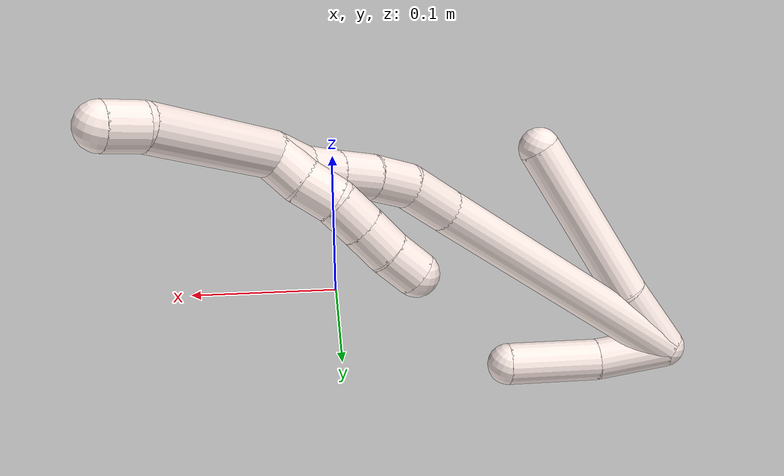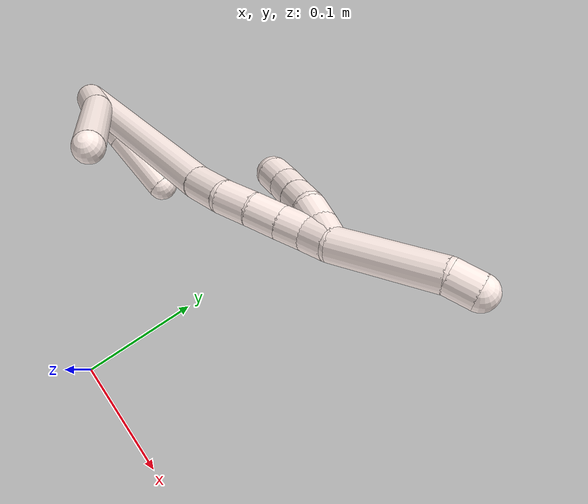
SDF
<sdf version="1.7">
 <world name="default">
  <model name="11">
   <static>0</static>
   <link name="11">
    <collision name="collision-cylinder-e_1_2_8">
     <pose>0.017433 -0.003956 0.013949 0.276351 0.877002 0.130242</pose>
     <geometry><cylinder><radius>0.0125</radius><length>0.045349</length></cylinder></geometry>
     <surface>
      <friction><ode><mu>1.16</mu><mu2>1.16</mu2><slip1>0</slip1><slip2>0</slip2></ode></friction>
      <contact><ode><kp>1e+06</kp><kd>1</kd><max_vel>0</max_vel><min_depth>0.001</min_depth></ode></contact>
     </surface>
    </collision>
    <visual name="visual-cylinder-e_1_2_8">
     <pose>0.017433 -0.003956 0.013949 0.276351 0.877002 0.130242</pose>
     <geometry><cylinder><radius>0.0125</radius><length>0.045349</length></cylinder></geometry>
     <material><ambient>1 0.933333 0.909804 1</ambient></material>
    </visual>
    <collision name="collision-cylinder-e_2_8_6">
     <pose>0.071167 -0.025201 0.061384 0.476613 0.766706 0.195321</pose>
     <geometry><cylinder><radius>0.0125</radius><length>0.104651</length></cylinder></geometry>
     <surface>
      <friction><ode><mu>1.16</mu><mu2>1.16</mu2><slip1>0</slip1><slip2>0</slip2></ode></friction>
      <contact><ode><kp>1e+06</kp><kd>1</kd><max_vel>0</max_vel><min_depth>0.001</min_depth></ode></contact>
     </surface>
    </collision>
    <visual name="visual-cylinder-e_2_8_6">
     <pose>0.071167 -0.025201 0.061384 0.476613 0.766706 0.195321</pose>
     <geometry><cylinder><radius>0.0125</radius><length>0.104651</length></cylinder></geometry>
     <material><ambient>1 0.933333 0.909804 1</ambient></material>
    </visual>
    <collision name="collision-cylinder-e_1_2_9">
     <pose>0.020099 -0.00091 -0.008718 3.03759 1.15956 2.98297</pose>
     <geometry><cylinder><radius>0.0125</radius><length>0.043855</length></cylinder></geometry>
     <surface>
      <friction><ode><mu>1.16</mu><mu2>1.16</mu2><slip1>0</slip1><slip2>0</slip2></ode></friction>
      <contact><ode><kp>1e+06</kp><kd>1</kd><max_vel>0</max_vel><min_depth>0.001</min_depth></ode></contact>
     </surface>
    </collision>
    <visual name="visual-cylinder-e_1_2_9">
     <pose>0.020099 -0.00091 -0.008718 3.03759 1.15956 2.98297</pose>
     <geometry><cylinder><radius>0.0125</radius><length>0.043855</length></cylinder></geometry>
     <material><ambient>1 0.933333 0.909804 1</ambient></material>
    </visual>
    <collision name="collision-cylinder-e_2_9_5">
     <pose>0.067369 -0.003188 -0.024361 2.94649 1.31662 2.88985</pose>
     <geometry><cylinder><radius>0.0125</radius><length>0.056145</length></cylinder></geometry>
     <surface>
      <friction><ode><mu>1.16</mu><mu2>1.16</mu2><slip1>0</slip1><slip2>0</slip2></ode></friction>
      <contact><ode><kp>1e+06</kp><kd>1</kd><max_vel>0</max_vel><min_depth>0.001</min_depth></ode></contact>
     </surface>
    </collision>
    <visual name="visual-cylinder-e_2_9_5">
     <pose>0.067369 -0.003188 -0.024361 2.94649 1.31662 2.88985</pose>
     <geometry><cylinder><radius>0.0125</radius><length>0.056145</length></cylinder></geometry>
     <material><ambient>1 0.933333 0.909804 1</ambient></material>
    </visual>
    <collision name="collision-cylinder-e_1_2_10">
     <pose>0.08464 0.000452 0.031407 -0.014401 1.21544 -0.010016</pose>
     <geometry><cylinder><radius>0.0125</radius><length>0.18056</length></cylinder></geometry>
     <surface>
      <friction><ode><mu>1.16</mu><mu2>1.16</mu2><slip1>0</slip1><slip2>0</slip2></ode></friction>
      <contact><ode><kp>1e+06</kp><kd>1</kd><max_vel>0</max_vel><min_depth>0.001</min_depth></ode></contact>
     </surface>
    </collision>
    <visual name="visual-cylinder-e_1_2_10">
     <pose>0.08464 0.000452 0.031407 -0.014401 1.21544 -0.010016</pose>
     <geometry><cylinder><radius>0.0125</radius><length>0.18056</length></cylinder></geometry>
     <material><ambient>1 0.933333 0.909804 1</ambient></material>
    </visual>
    <collision name="collision-cylinder-e_2_10_11">
     <pose>0.183225 0.002466 0.068504 -0.26788 1.17054 -0.178127</pose>
     <geometry><cylinder><radius>0.0125</radius><length>0.030284</length></cylinder></geometry>
     <surface>
      <friction><ode><mu>1.16</mu><mu2>1.16</mu2><slip1>0</slip1><slip2>0</slip2></ode></friction>
      <contact><ode><kp>1e+06</kp><kd>1</kd><max_vel>0</max_vel><min_depth>0.001</min_depth></ode></contact>
     </surface>
    </collision>
    <visual name="visual-cylinder-e_2_10_11">
     <pose>0.183225 0.002466 0.068504 -0.26788 1.17054 -0.178127</pose>
     <geometry><cylinder><radius>0.0125</radius><length>0.030284</length></cylinder></geometry>
     <material><ambient>1 0.933333 0.909804 1</ambient></material>
    </visual>
    <collision name="collision-cylinder-e_3_11_12">
     <pose>0.209078 0.007538 0.076065 -1.08101 1.24842 -0.815995</pose>
     <geometry><cylinder><radius>0.0125</radius><length>0.02511</length></cylinder></geometry>
     <surface>
      <friction><ode><mu>1.16</mu><mu2>1.16</mu2><slip1>0</slip1><slip2>0</slip2></ode></friction>
      <contact><ode><kp>1e+06</kp><kd>1</kd><max_vel>0</max_vel><min_depth>0.001</min_depth></ode></contact>
     </surface>
    </collision>
    <visual name="visual-cylinder-e_3_11_12">
     <pose>0.209078 0.007538 0.076065 -1.08101 1.24842 -0.815995</pose>
     <geometry><cylinder><radius>0.0125</radius><length>0.02511</length></cylinder></geometry>
     <material><ambient>1 0.933333 0.909804 1</ambient></material>
    </visual>
    <collision name="collision-cylinder-e_4_12_13">
     <pose>0.232233 0.014662 0.078444 -1.43116 1.25704 -1.12701</pose>
     <geometry><cylinder><radius>0.0125</radius><length>0.023647</length></cylinder></geometry>
     <surface>
      <friction><ode><mu>1.16</mu><mu2>1.16</mu2><slip1>0</slip1><slip2>0</slip2></ode></friction>
      <contact><ode><kp>1e+06</kp><kd>1</kd><max_vel>0</max_vel><min_depth>0.001</min_depth></ode></contact>
     </surface>
    </collision>
    <visual name="visual-cylinder-e_4_12_13">
     <pose>0.232233 0.014662 0.078444 -1.43116 1.25704 -1.12701</pose>
     <geometry><cylinder><radius>0.0125</radius><length>0.023647</length></cylinder></geometry>
     <material><ambient>1 0.933333 0.909804 1</ambient></material>
    </visual>
    <collision name="collision-cylinder-e_5_13_14">
     <pose>0.253065 0.021418 0.079728 -1.32888 1.24513 -1.02433</pose>
     <geometry><cylinder><radius>0.0125</radius><length>0.020236</length></cylinder></geometry>
     <surface>
      <friction><ode><mu>1.16</mu><mu2>1.16</mu2><slip1>0</slip1><slip2>0</slip2></ode></friction>
      <contact><ode><kp>1e+06</kp><kd>1</kd><max_vel>0</max_vel><min_depth>0.001</min_depth></ode></contact>
     </surface>
    </collision>
    <visual name="visual-cylinder-e_5_13_14">
     <pose>0.253065 0.021418 0.079728 -1.32888 1.24513 -1.02433</pose>
     <geometry><cylinder><radius>0.0125</radius><length>0.020236</length></cylinder></geometry>
     <material><ambient>1 0.933333 0.909804 1</ambient></material>
    </visual>
    <collision name="collision-cylinder-e_6_14_1">
     <pose>0.272007 0.026532 0.0837 -0.552614 1.18908 -0.378863</pose>
     <geometry><cylinder><radius>0.0125</radius><length>0.020163</length></cylinder></geometry>
     <surface>
      <friction><ode><mu>1.16</mu><mu2>1.16</mu2><slip1>0</slip1><slip2>0</slip2></ode></friction>
      <contact><ode><kp>1e+06</kp><kd>1</kd><max_vel>0</max_vel><min_depth>0.001</min_depth></ode></contact>
     </surface>
    </collision>
    <visual name="visual-cylinder-e_6_14_1">
     <pose>0.272007 0.026532 0.0837 -0.552614 1.18908 -0.378863</pose>
     <geometry><cylinder><radius>0.0125</radius><length>0.020163</length></cylinder></geometry>
     <material><ambient>1 0.933333 0.909804 1</ambient></material>
    </visual>
    <collision name="collision-cylinder-e_1_1_15">
     <pose>0.272871 0.031698 0.08269 -2.49206 -1.01441 2.05212</pose>
     <geometry><cylinder><radius>0.0125</radius><length>0.02</length></cylinder></geometry>
     <surface>
      <friction><ode><mu>1.16</mu><mu2>1.16</mu2><slip1>0</slip1><slip2>0</slip2></ode></friction>
      <contact><ode><kp>1e+06</kp><kd>1</kd><max_vel>0</max_vel><min_depth>0.001</min_depth></ode></contact>
     </surface>
    </collision>
    <visual name="visual-cylinder-e_1_1_15">
     <pose>0.272871 0.031698 0.08269 -2.49206 -1.01441 2.05212</pose>
     <geometry><cylinder><radius>0.0125</radius><length>0.02</length></cylinder></geometry>
     <material><ambient>1 0.933333 0.909804 1</ambient></material>
    </visual>
    <collision name="collision-cylinder-e_2_15_16">
     <pose>0.255133 0.037592 0.075797 -2.35393 -1.17997 2.03068</pose>
     <geometry><cylinder><radius>0.0125</radius><length>0.02</length></cylinder></geometry>
     <surface>
      <friction><ode><mu>1.16</mu><mu2>1.16</mu2><slip1>0</slip1><slip2>0</slip2></ode></friction>
      <contact><ode><kp>1e+06</kp><kd>1</kd><max_vel>0</max_vel><min_depth>0.001</min_depth></ode></contact>
     </surface>
    </collision>
    <visual name="visual-cylinder-e_2_15_16">
     <pose>0.255133 0.037592 0.075797 -2.35393 -1.17997 2.03068</pose>
     <geometry><cylinder><radius>0.0125</radius><length>0.02</length></cylinder></geometry>
     <material><ambient>1 0.933333 0.909804 1</ambient></material>
    </visual>
    <collision name="collision-cylinder-e_3_16_17">
     <pose>0.237321 0.041835 0.068187 -2.8378 -1.02877 2.61255</pose>
     <geometry><cylinder><radius>0.0125</radius><length>0.02</length></cylinder></geometry>
     <surface>
      <friction><ode><mu>1.16</mu><mu2>1.16</mu2><slip1>0</slip1><slip2>0</slip2></ode></friction>
      <contact><ode><kp>1e+06</kp><kd>1</kd><max_vel>0</max_vel><min_depth>0.001</min_depth></ode></contact>
     </surface>
    </collision>
    <visual name="visual-cylinder-e_3_16_17">
     <pose>0.237321 0.041835 0.068187 -2.8378 -1.02877 2.61255</pose>
     <geometry><cylinder><radius>0.0125</radius><length>0.02</length></cylinder></geometry>
     <material><ambient>1 0.933333 0.909804 1</ambient></material>
    </visual>
    <collision name="collision-cylinder-e_4_17_18">
     <pose>0.22033 0.045266 0.058217 -2.78367 -1.00171 2.50328</pose>
     <geometry><cylinder><radius>0.0125</radius><length>0.02</length></cylinder></geometry>
     <surface>
      <friction><ode><mu>1.16</mu><mu2>1.16</mu2><slip1>0</slip1><slip2>0</slip2></ode></friction>
      <contact><ode><kp>1e+06</kp><kd>1</kd><max_vel>0</max_vel><min_depth>0.001</min_depth></ode></contact>
     </surface>
    </collision>
    <visual name="visual-cylinder-e_4_17_18">
     <pose>0.22033 0.045266 0.058217 -2.78367 -1.00171 2.50328</pose>
     <geometry><cylinder><radius>0.0125</radius><length>0.02</length></cylinder></geometry>
     <material><ambient>1 0.933333 0.909804 1</ambient></material>
    </visual>
    <collision name="collision-cylinder-e_5_18_4">
     <pose>0.20294 0.048335 0.048903 -2.87141 -1.11206 2.71093</pose>
     <geometry><cylinder><radius>0.0125</radius><length>0.02</length></cylinder></geometry>
     <surface>
      <friction><ode><mu>1.16</mu><mu2>1.16</mu2><slip1>0</slip1><slip2>0</slip2></ode></friction>
      <contact><ode><kp>1e+06</kp><kd>1</kd><max_vel>0</max_vel><min_depth>0.001</min_depth></ode></contact>
     </surface>
    </collision>
    <visual name="visual-cylinder-e_5_18_4">
     <pose>0.20294 0.048335 0.048903 -2.87141 -1.11206 2.71093</pose>
     <geometry><cylinder><radius>0.0125</radius><length>0.02</length></cylinder></geometry>
     <material><ambient>1 0.933333 0.909804 1</ambient></material>
    </visual>
    <collision name="collision-cylinder-e_1_1_19">
     <pose>0.31669 0.044478 0.093859 -1.15977 1.11255 -0.773507</pose>
     <geometry><cylinder><radius>0.0125</radius><length>0.078782</length></cylinder></geometry>
     <surface>
      <friction><ode><mu>1.16</mu><mu2>1.16</mu2><slip1>0</slip1><slip2>0</slip2></ode></friction>
      <contact><ode><kp>1e+06</kp><kd>1</kd><max_vel>0</max_vel><min_depth>0.001</min_depth></ode></contact>
     </surface>
    </collision>
    <visual name="visual-cylinder-e_1_1_19">
     <pose>0.31669 0.044478 0.093859 -1.15977 1.11255 -0.773507</pose>
     <geometry><cylinder><radius>0.0125</radius><length>0.078782</length></cylinder></geometry>
     <material><ambient>1 0.933333 0.909804 1</ambient></material>
    </visual>
    <collision name="collision-cylinder-e_2_19_3">
     <pose>0.362161 0.063478 0.100117 -1.79937 1.27361 -1.49979</pose>
     <geometry><cylinder><radius>0.0125</radius><length>0.021218</length></cylinder></geometry>
     <surface>
      <friction><ode><mu>1.16</mu><mu2>1.16</mu2><slip1>0</slip1><slip2>0</slip2></ode></friction>
      <contact><ode><kp>1e+06</kp><kd>1</kd><max_vel>0</max_vel><min_depth>0.001</min_depth></ode></contact>
     </surface>
    </collision>
    <visual name="visual-cylinder-e_2_19_3">
     <pose>0.362161 0.063478 0.100117 -1.79937 1.27361 -1.49979</pose>
     <geometry><cylinder><radius>0.0125</radius><length>0.021218</length></cylinder></geometry>
     <material><ambient>1 0.933333 0.909804 1</ambient></material>
    </visual>
    <collision name="collision-sphere-3">
     <pose>0.372305 0.066504 0.099413 0 -0 0</pose>
     <geometry><sphere><radius>0.0125</radius></sphere></geometry>
     <surface>
      <friction><ode><mu>1.16</mu><mu2>1.16</mu2><slip1>0</slip1><slip2>0</slip2></ode></friction>
      <contact><ode><kp>1e+06</kp><kd>1</kd><max_vel>0</max_vel><min_depth>0.001</min_depth></ode></contact>
     </surface>
    </collision>
    <visual name="visual-sphere-3">
     <pose>0.372305 0.066504 0.099413 0 -0 0</pose>
     <geometry><sphere><radius>0.0125</radius></sphere></geometry>
     <material><ambient>1 0.933333 0.909804 1</ambient></material>
    </visual>
    <collision name="collision-sphere-19">
     <pose>0.352017 0.060452 0.100821 0 -0 0</pose>
     <geometry><sphere><radius>0.0125</radius></sphere></geometry>
     <surface>
      <friction><ode><mu>1.16</mu><mu2>1.16</mu2><slip1>0</slip1><slip2>0</slip2></ode></friction>
      <contact><ode><kp>1e+06</kp><kd>1</kd><max_vel>0</max_vel><min_depth>0.001</min_depth></ode></contact>
     </surface>
    </collision>
    <visual name="visual-sphere-19">
     <pose>0.352017 0.060452 0.100821 0 -0 0</pose>
     <geometry><sphere><radius>0.0125</radius></sphere></geometry>
     <material><ambient>1 0.933333 0.909804 1</ambient></material>
    </visual>
    <collision name="collision-sphere-10">
     <pose>0.169279 0.000905 0.062814 0 -0 0</pose>
     <geometry><sphere><radius>0.0125</radius></sphere></geometry>
     <surface>
      <friction><ode><mu>1.16</mu><mu2>1.16</mu2><slip1>0</slip1><slip2>0</slip2></ode></friction>
      <contact><ode><kp>1e+06</kp><kd>1</kd><max_vel>0</max_vel><min_depth>0.001</min_depth></ode></contact>
     </surface>
    </collision>
    <visual name="visual-sphere-10">
     <pose>0.169279 0.000905 0.062814 0 -0 0</pose>
     <geometry><sphere><radius>0.0125</radius></sphere></geometry>
     <material><ambient>1 0.933333 0.909804 1</ambient></material>
    </visual>
    <collision name="collision-sphere-5">
     <pose>0.09454 -0.004557 -0.031286 0 -0 0</pose>
     <geometry><sphere><radius>0.0125</radius></sphere></geometry>
     <surface>
      <friction><ode><mu>1.16</mu><mu2>1.16</mu2><slip1>0</slip1><slip2>0</slip2></ode></friction>
      <contact><ode><kp>1e+06</kp><kd>1</kd><max_vel>0</max_vel><min_depth>0.001</min_depth></ode></contact>
     </surface>
    </collision>
    <visual name="visual-sphere-5">
     <pose>0.09454 -0.004557 -0.031286 0 -0 0</pose>
     <geometry><sphere><radius>0.0125</radius></sphere></geometry>
     <material><ambient>1 0.933333 0.909804 1</ambient></material>
    </visual>
    <collision name="collision-sphere-6">
     <pose>0.107469 -0.04249 0.094869 0 -0 0</pose>
     <geometry><sphere><radius>0.0125</radius></sphere></geometry>
     <surface>
      <friction><ode><mu>1.16</mu><mu2>1.16</mu2><slip1>0</slip1><slip2>0</slip2></ode></friction>
      <contact><ode><kp>1e+06</kp><kd>1</kd><max_vel>0</max_vel><min_depth>0.001</min_depth></ode></contact>
     </surface>
    </collision>
    <visual name="visual-sphere-6">
     <pose>0.107469 -0.04249 0.094869 0 -0 0</pose>
     <geometry><sphere><radius>0.0125</radius></sphere></geometry>
     <material><ambient>1 0.933333 0.909804 1</ambient></material>
    </visual>
    <collision name="collision-sphere-9">
     <pose>0.040198 -0.00182 -0.017436 0 -0 0</pose>
     <geometry><sphere><radius>0.0125</radius></sphere></geometry>
     <surface>
      <friction><ode><mu>1.16</mu><mu2>1.16</mu2><slip1>0</slip1><slip2>0</slip2></ode></friction>
      <contact><ode><kp>1e+06</kp><kd>1</kd><max_vel>0</max_vel><min_depth>0.001</min_depth></ode></contact>
     </surface>
    </collision>
    <visual name="visual-sphere-9">
     <pose>0.040198 -0.00182 -0.017436 0 -0 0</pose>
     <geometry><sphere><radius>0.0125</radius></sphere></geometry>
     <material><ambient>1 0.933333 0.909804 1</ambient></material>
    </visual>
    <collision name="collision-sphere-2">
     <geometry><sphere><radius>0.0125</radius></sphere></geometry>
     <surface>
      <friction><ode><mu>1.16</mu><mu2>1.16</mu2><slip1>0</slip1><slip2>0</slip2></ode></friction>
      <contact><ode><kp>1e+06</kp><kd>1</kd><max_vel>0</max_vel><min_depth>0.001</min_depth></ode></contact>
     </surface>
    </collision>
    <visual name="visual-sphere-2">
     <geometry><sphere><radius>0.0125</radius></sphere></geometry>
     <material><ambient>1 0.933333 0.909804 1</ambient></material>
    </visual>
    <collision name="collision-sphere-8">
     <pose>0.034866 -0.007912 0.027899 0 -0 0</pose>
     <geometry><sphere><radius>0.0125</radius></sphere></geometry>
     <surface>
      <friction><ode><mu>1.16</mu><mu2>1.16</mu2><slip1>0</slip1><slip2>0</slip2></ode></friction>
      <contact><ode><kp>1e+06</kp><kd>1</kd><max_vel>0</max_vel><min_depth>0.001</min_depth></ode></contact>
     </surface>
    </collision>
    <visual name="visual-sphere-8">
     <pose>0.034866 -0.007912 0.027899 0 -0 0</pose>
     <geometry><sphere><radius>0.0125</radius></sphere></geometry>
     <material><ambient>1 0.933333 0.909804 1</ambient></material>
    </visual>
    <collision name="collision-sphere-11">
     <pose>0.19717 0.004028 0.074194 0 -0 0</pose>
     <geometry><sphere><radius>0.0125</radius></sphere></geometry>
     <surface>
      <friction><ode><mu>1.16</mu><mu2>1.16</mu2><slip1>0</slip1><slip2>0</slip2></ode></friction>
      <contact><ode><kp>1e+06</kp><kd>1</kd><max_vel>0</max_vel><min_depth>0.001</min_depth></ode></contact>
     </surface>
    </collision>
    <visual name="visual-sphere-11">
     <pose>0.19717 0.004028 0.074194 0 -0 0</pose>
     <geometry><sphere><radius>0.0125</radius></sphere></geometry>
     <material><ambient>1 0.933333 0.909804 1</ambient></material>
    </visual>
    <collision name="collision-sphere-12">
     <pose>0.220987 0.011048 0.077937 0 -0 0</pose>
     <geometry><sphere><radius>0.0125</radius></sphere></geometry>
     <surface>
      <friction><ode><mu>1.16</mu><mu2>1.16</mu2><slip1>0</slip1><slip2>0</slip2></ode></friction>
      <contact><ode><kp>1e+06</kp><kd>1</kd><max_vel>0</max_vel><min_depth>0.001</min_depth></ode></contact>
     </surface>
    </collision>
    <visual name="visual-sphere-12">
     <pose>0.220987 0.011048 0.077937 0 -0 0</pose>
     <geometry><sphere><radius>0.0125</radius></sphere></geometry>
     <material><ambient>1 0.933333 0.909804 1</ambient></material>
    </visual>
    <collision name="collision-sphere-13">
     <pose>0.243479 0.018275 0.078952 0 -0 0</pose>
     <geometry><sphere><radius>0.0125</radius></sphere></geometry>
     <surface>
      <friction><ode><mu>1.16</mu><mu2>1.16</mu2><slip1>0</slip1><slip2>0</slip2></ode></friction>
      <contact><ode><kp>1e+06</kp><kd>1</kd><max_vel>0</max_vel><min_depth>0.001</min_depth></ode></contact>
     </surface>
    </collision>
    <visual name="visual-sphere-13">
     <pose>0.243479 0.018275 0.078952 0 -0 0</pose>
     <geometry><sphere><radius>0.0125</radius></sphere></geometry>
     <material><ambient>1 0.933333 0.909804 1</ambient></material>
    </visual>
    <collision name="collision-sphere-14">
     <pose>0.262651 0.024561 0.080503 0 -0 0</pose>
     <geometry><sphere><radius>0.0125</radius></sphere></geometry>
     <surface>
      <friction><ode><mu>1.16</mu><mu2>1.16</mu2><slip1>0</slip1><slip2>0</slip2></ode></friction>
      <contact><ode><kp>1e+06</kp><kd>1</kd><max_vel>0</max_vel><min_depth>0.001</min_depth></ode></contact>
     </surface>
    </collision>
    <visual name="visual-sphere-14">
     <pose>0.262651 0.024561 0.080503 0 -0 0</pose>
     <geometry><sphere><radius>0.0125</radius></sphere></geometry>
     <material><ambient>1 0.933333 0.909804 1</ambient></material>
    </visual>
    <collision name="collision-sphere-1">
     <pose>0.281363 0.028504 0.086896 0 -0 0</pose>
     <geometry><sphere><radius>0.0125</radius></sphere></geometry>
     <surface>
      <friction><ode><mu>1.16</mu><mu2>1.16</mu2><slip1>0</slip1><slip2>0</slip2></ode></friction>
      <contact><ode><kp>1e+06</kp><kd>1</kd><max_vel>0</max_vel><min_depth>0.001</min_depth></ode></contact>
     </surface>
    </collision>
    <visual name="visual-sphere-1">
     <pose>0.281363 0.028504 0.086896 0 -0 0</pose>
     <geometry><sphere><radius>0.0125</radius></sphere></geometry>
     <material><ambient>1 0.933333 0.909804 1</ambient></material>
    </visual>
    <collision name="collision-sphere-18">
     <pose>0.211906 0.047153 0.05317 0 -0 0</pose>
     <geometry><sphere><radius>0.0125</radius></sphere></geometry>
     <surface>
      <friction><ode><mu>1.16</mu><mu2>1.16</mu2><slip1>0</slip1><slip2>0</slip2></ode></friction>
      <contact><ode><kp>1e+06</kp><kd>1</kd><max_vel>0</max_vel><min_depth>0.001</min_depth></ode></contact>
     </surface>
    </collision>
    <visual name="visual-sphere-18">
     <pose>0.211906 0.047153 0.05317 0 -0 0</pose>
     <geometry><sphere><radius>0.0125</radius></sphere></geometry>
     <material><ambient>1 0.933333 0.909804 1</ambient></material>
    </visual>
    <collision name="collision-sphere-15">
     <pose>0.264379 0.034892 0.078485 0 -0 0</pose>
     <geometry><sphere><radius>0.0125</radius></sphere></geometry>
     <surface>
      <friction><ode><mu>1.16</mu><mu2>1.16</mu2><slip1>0</slip1><slip2>0</slip2></ode></friction>
      <contact><ode><kp>1e+06</kp><kd>1</kd><max_vel>0</max_vel><min_depth>0.001</min_depth></ode></contact>
     </surface>
    </collision>
    <visual name="visual-sphere-15">
     <pose>0.264379 0.034892 0.078485 0 -0 0</pose>
     <geometry><sphere><radius>0.0125</radius></sphere></geometry>
     <material><ambient>1 0.933333 0.909804 1</ambient></material>
    </visual>
    <collision name="collision-sphere-16">
     <pose>0.245888 0.040292 0.073109 0 -0 0</pose>
     <geometry><sphere><radius>0.0125</radius></sphere></geometry>
     <surface>
      <friction><ode><mu>1.16</mu><mu2>1.16</mu2><slip1>0</slip1><slip2>0</slip2></ode></friction>
      <contact><ode><kp>1e+06</kp><kd>1</kd><max_vel>0</max_vel><min_depth>0.001</min_depth></ode></contact>
     </surface>
    </collision>
    <visual name="visual-sphere-16">
     <pose>0.245888 0.040292 0.073109 0 -0 0</pose>
     <geometry><sphere><radius>0.0125</radius></sphere></geometry>
     <material><ambient>1 0.933333 0.909804 1</ambient></material>
    </visual>
    <collision name="collision-sphere-17">
     <pose>0.228754 0.043378 0.063264 0 -0 0</pose>
     <geometry><sphere><radius>0.0125</radius></sphere></geometry>
     <surface>
      <friction><ode><mu>1.16</mu><mu2>1.16</mu2><slip1>0</slip1><slip2>0</slip2></ode></friction>
      <contact><ode><kp>1e+06</kp><kd>1</kd><max_vel>0</max_vel><min_depth>0.001</min_depth></ode></contact>
     </surface>
    </collision>
    <visual name="visual-sphere-17">
     <pose>0.228754 0.043378 0.063264 0 -0 0</pose>
     <geometry><sphere><radius>0.0125</radius></sphere></geometry>
     <material><ambient>1 0.933333 0.909804 1</ambient></material>
    </visual>
    <collision name="collision-sphere-4">
     <pose>0.193974 0.049517 0.044635 0 -0 0</pose>
     <geometry><sphere><radius>0.0125</radius></sphere></geometry>
     <surface>
      <friction><ode><mu>1.16</mu><mu2>1.16</mu2><slip1>0</slip1><slip2>0</slip2></ode></friction>
      <contact><ode><kp>1e+06</kp><kd>1</kd><max_vel>0</max_vel><min_depth>0.001</min_depth></ode></contact>
     </surface>
    </collision>
    <visual name="visual-sphere-4">
     <pose>0.193974 0.049517 0.044635 0 -0 0</pose>
     <geometry><sphere><radius>0.0125</radius></sphere></geometry>
     <material><ambient>1 0.933333 0.909804 1</ambient></material>
    </visual>
    <inertial>
     <pose>0.148648 0.010094 0.048416 0 -0 0</pose>
     <mass>0.75</mass>
     <inertia>
      <ixx>0.000295</ixx>
      <ixy>0</ixy>
      <ixz>0</ixz>
      <iyy>0.000686</iyy>
      <iyz>0</iyz>
      <izz>-0.000591</izz>
     </inertia>
    </inertial>
   </link>
   <pose>-0.198473 0.12805 0.017011 -0.060428 -0.299826 0.166691</pose>
  </model>
 </world>
</sdf>
